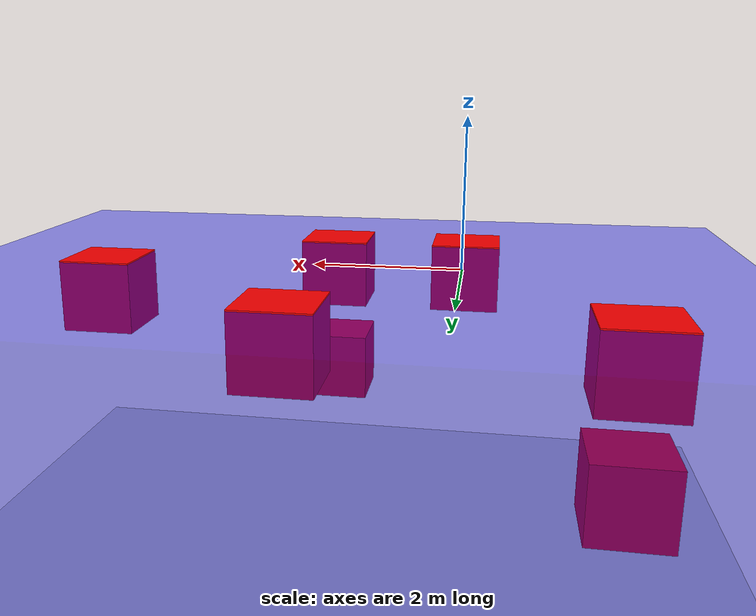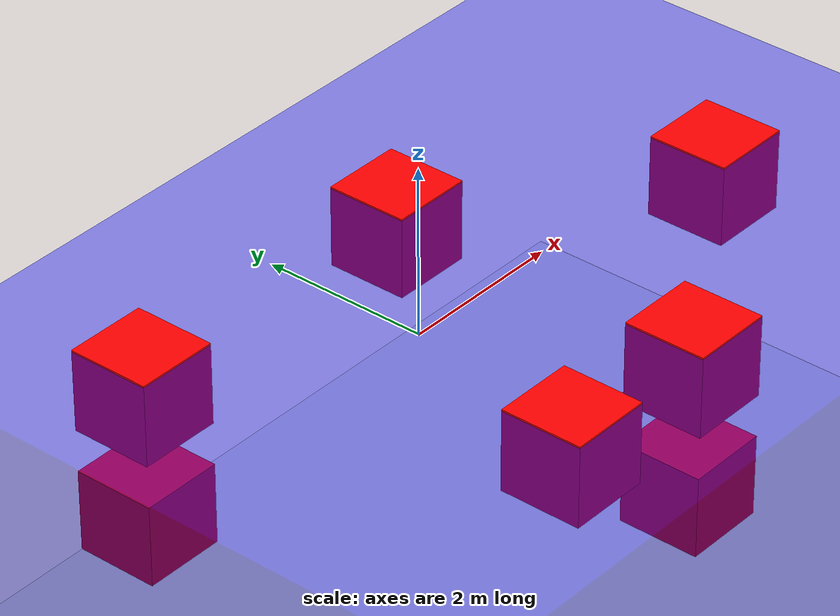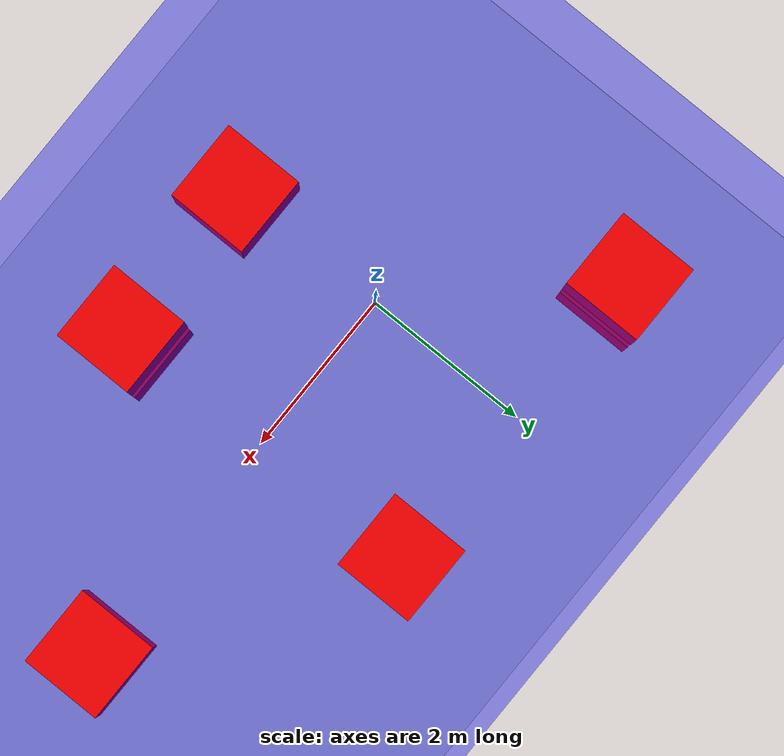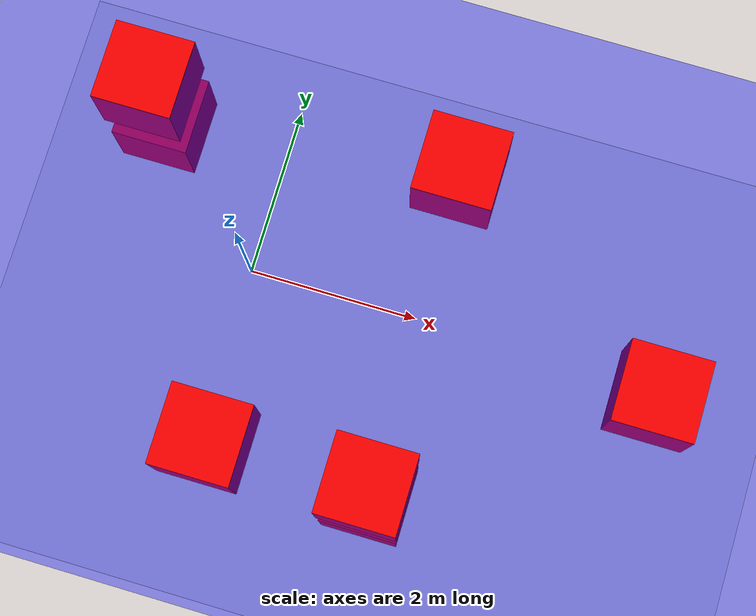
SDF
<?xml version="1.0" ?>
<sdf version="1.10">
    <world name="CompetitionWorld2025">

        <physics name="1ms" type="ignored">
            <max_step_size>0.001</max_step_size>
            <real_time_factor>1.0</real_time_factor>
        </physics>

        <!-- ArduPilot EKF Origin (Required for SITL pre-arm checks) -->
        <spherical_coordinates>
            <surface_model>EARTH_WGS84</surface_model>
            <latitude_deg>31.2001</latitude_deg>
            <longitude_deg>29.9187</longitude_deg>
            <elevation>0.0</elevation>
            <heading_deg>0</heading_deg>
        </spherical_coordinates>

        <!-- Standard Gazebo Plugins -->
        <plugin filename="gz-sim-physics-system" name="gz::sim::systems::Physics" />
        <plugin filename="gz-sim-sensors-system" name="gz::sim::systems::Sensors">
            <render_engine>ogre2</render_engine>
        </plugin>
        <plugin filename="gz-sim-imu-system" name="gz::sim::systems::Imu" />
        <plugin filename="gz-sim-user-commands-system" name="gz::sim::systems::UserCommands" />
        <plugin filename="gz-sim-scene-broadcaster-system" name="gz::sim::systems::SceneBroadcaster" />

        <!-- Standard Gazebo Buoyancy Plugin (Water below z=0, Air above z=0) -->
        <plugin filename="gz-sim-buoyancy-system" name="gz::sim::systems::Buoyancy">
            <graded_buoyancy>
                <default_density>998.0</default_density>
                <density_change>
                    <above_depth>0.0</above_depth>
                    <density>1.225</density>
                </density_change>
            </graded_buoyancy>
            <enable>mako</enable>
        </plugin>
        <!-- Lighting -->
        <light type="directional" name="sun">
            <cast_shadows>true</cast_shadows>
            <pose>0 0 10 0 0 0</pose>
            <diffuse>0.8 0.8 0.8 1</diffuse>
            <specular>0.2 0.2 0.2 1</specular>
            <attenuation>
                <range>1000</range>
                <constant>0.9</constant>
                <linear>0.01</linear>
                <quadratic>0.001</quadratic>
            </attenuation>
            <direction>-0.5 0.1 -0.9</direction>
        </light>

        <!-- Visuals & Models -->
        <model name='water_plane'>
            <static>true</static>
            <link name='link'>
              <visual name='water_plane'>
                <geometry>
                  <box>
                    <size>100 100 4</size>
                  </box>
                </geometry>
                <material>
                  <ambient>0 0 1 0.4</ambient>
                  <diffuse>0 0 1 0.4</diffuse>
                  <specular>0 0 1 0.4</specular>
                </material>
              </visual>
              <pose>0 0 -2 0 0 0</pose>
              <inertial>
                <pose>0 0 0 0 0 0</pose>
                <mass>1</mass>
                <inertia>
                  <ixx>1</ixx>
                  <ixy>0</ixy>
                  <ixz>0</ixz>
                  <iyy>1</iyy>
                  <iyz>0</iyz>
                  <izz>1</izz>
                </inertia>
              </inertial>
              <enable_wind>false</enable_wind>
            </link>
            <pose>0 0 0 0 0 0</pose>
            <self_collide>false</self_collide>
        </model>

        <model name="ground_plane">
            <static>true</static>
            <pose>0 0 -4 0 0 0</pose>
            <link name="link">
                <collision name="collision">
                <geometry>
                    <plane>
                    <normal>0 0 1</normal>
                    </plane>
                </geometry>
                </collision>
                <visual name="visual">
                <geometry>
                    <plane>
                    <normal>0 0 1</normal>
                    <size>100 100</size>
                    </plane>
                </geometry>
                <material>
                    <ambient>0.8 0.8 0.8 1</ambient>
                    <diffuse>0.8 0.8 0.8 1</diffuse>
                    <specular>0.8 0.8 0.8 1</specular>
                </material>
                </visual>
            </link>
        </model>

        <!-- Red Boxes 1-7 -->
        <model name="red_box"><static>true</static><pose>5 0 -0.48 0 0 0</pose><link name="red_box_link"><visual name="red_box_visual"><geometry><box><size>1 1 1</size></box></geometry><material><ambient>1 0 0 1</ambient><diffuse>1 0 0 1</diffuse><specular>1 0 0 1</specular></material></visual><collision name="red_box_collision"><geometry><box><size>1 1 1</size></box></geometry></collision></link></model>
        <model name="red_box_2"><static>true</static><pose>0 -2 -0.48 0 0 0</pose><link name="red_box_link_2"><visual name="red_box_visual_2"><geometry><box><size>1 1 1</size></box></geometry><material><ambient>1 0 0 1</ambient><diffuse>1 0 0 1</diffuse><specular>1 0 0 1</specular></material></visual><collision name="red_box_collision_2"><geometry><box><size>1 1 1</size></box></geometry></collision></link></model>
        <model name="red_box_3"><static>true</static><pose>2 -2 -0.48 0 0 0</pose><link name="red_box_link_3"><visual name="red_box_visual_3"><geometry><box><size>1 1 1</size></box></geometry><material><ambient>1 0 0 1</ambient><diffuse>1 0 0 1</diffuse><specular>1 0 0 1</specular></material></visual><collision name="red_box_collision_3"><geometry><box><size>1 1 1</size></box></geometry></collision></link></model>
        <model name="red_box_4"><static>true</static><pose>2 2 -0.48 0 0 0</pose><link name="red_box_link_4"><visual name="red_box_visual_4"><geometry><box><size>1 1 1</size></box></geometry><material><ambient>1 0 0 1</ambient><diffuse>1 0 0 1</diffuse><specular>1 0 0 1</specular></material></visual><collision name="red_box_collision_4"><geometry><box><size>1 1 1</size></box></geometry></collision></link></model>
        <model name="red_box_5"><static>true</static><pose>-2 2 -0.48 0 0 0</pose><link name="red_box_link_5"><visual name="red_box_visual_5"><geometry><box><size>1 1 1</size></box></geometry><material><ambient>1 0 0 1</ambient><diffuse>1 0 0 1</diffuse><specular>1 0 0 1</specular></material></visual><collision name="red_box_collision_5"><geometry><box><size>1 1 1</size></box></geometry></collision></link></model>
        <model name="red_box_6"><static>true</static><pose>-2 2 -2 0 0 0</pose><link name="red_box_link_6"><visual name="red_box_visual_6"><geometry><box><size>1 1 1</size></box></geometry><material><ambient>1 0 0 1</ambient><diffuse>1 0 0 1</diffuse><specular>1 0 0 1</specular></material></visual><collision name="red_box_collision_6"><geometry><box><size>1 1 1</size></box></geometry></collision></link></model>
        <model name="red_box_7"><static>true</static><pose>2 -2 -2 0 0 0</pose><link name="red_box_link_7"><visual name="red_box_visual_7"><geometry><box><size>1 1 1</size></box></geometry><material><ambient>1 0 0 1</ambient><diffuse>1 0 0 1</diffuse><specular>1 0 0 1</specular></material></visual><collision name="red_box_collision_7"><geometry><box><size>1 1 1</size></box></geometry></collision></link></model>

    </world>
</sdf>
